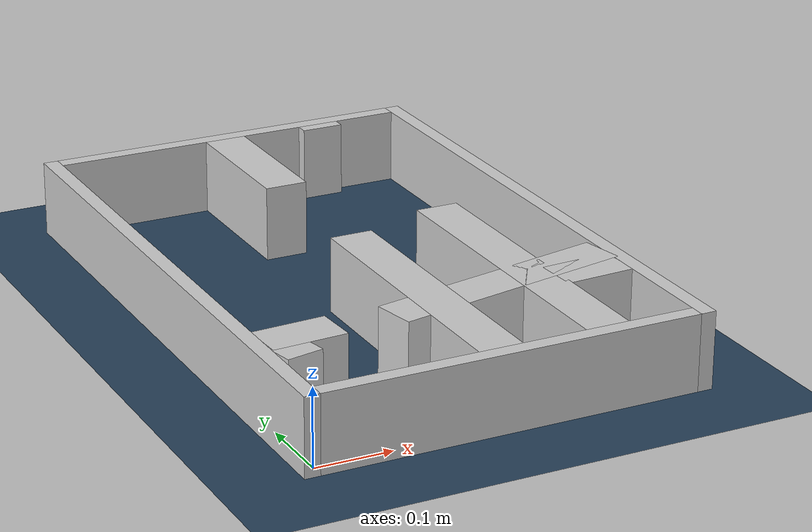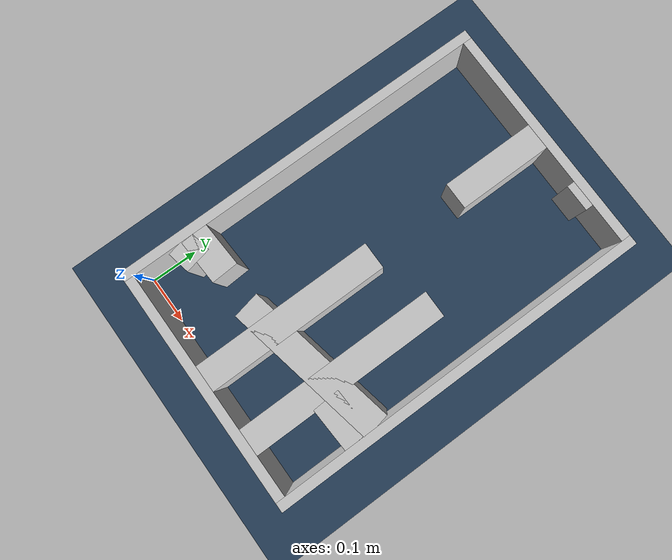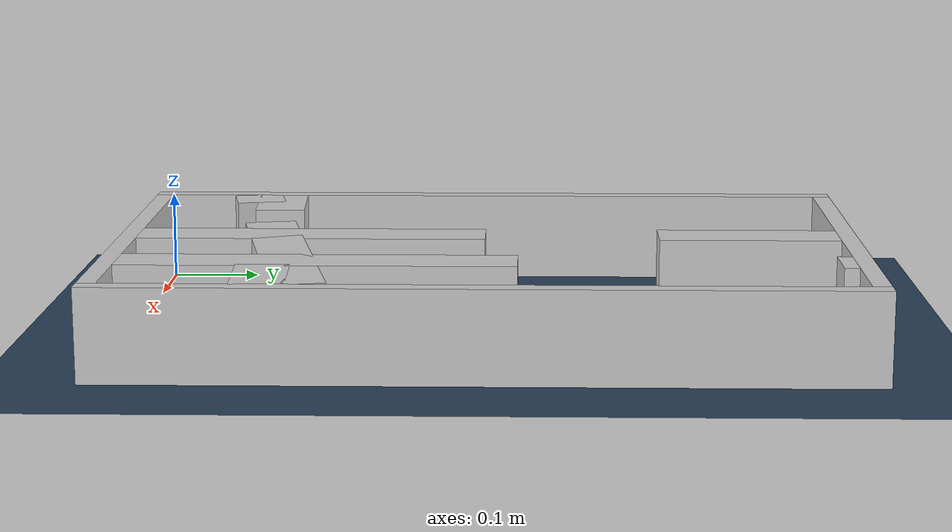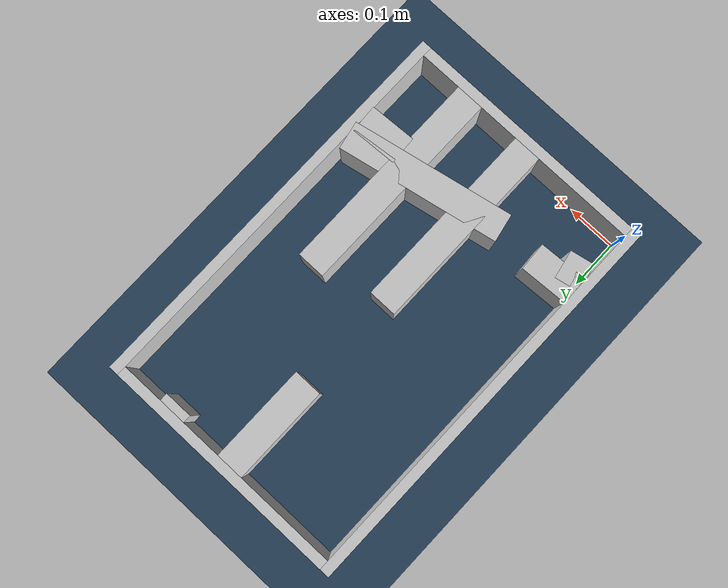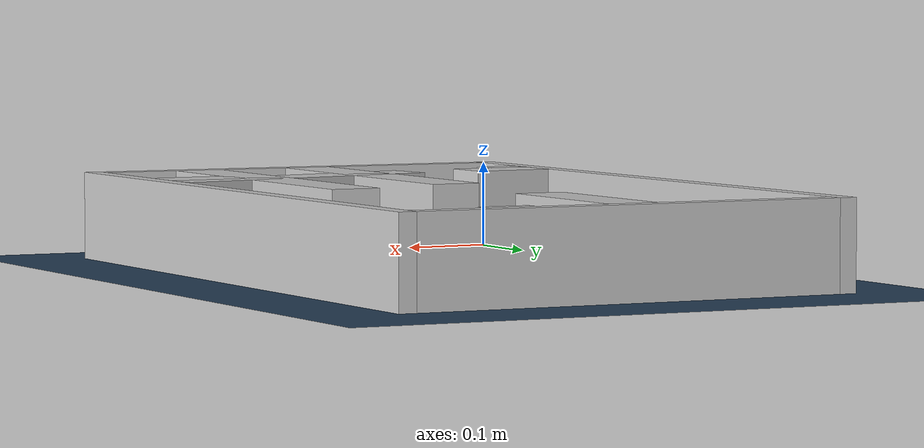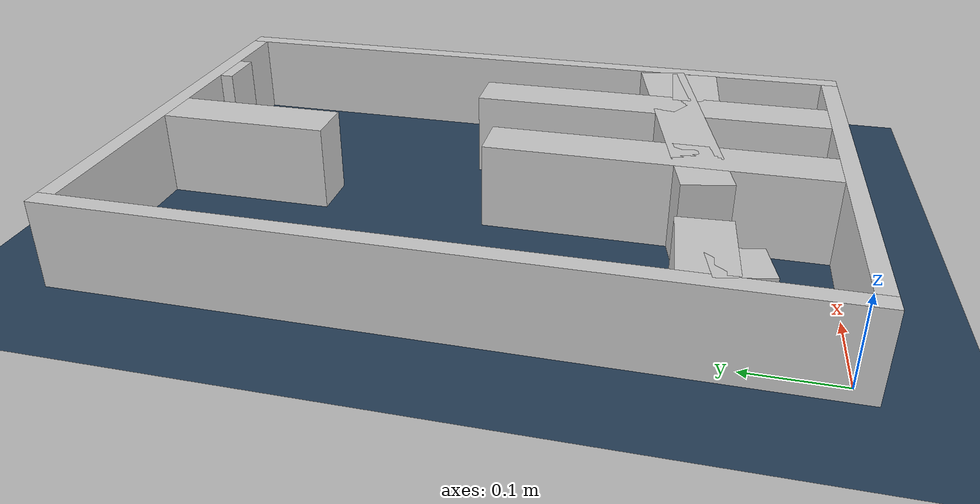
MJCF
<?xml version="1.0" ?>
<mujoco model="generated_real_template">
  <compiler angle="degree"/>
  <option timestep="0.002" integrator="implicitfast" iterations="100" cone="elliptic"/>
  <default>
    <geom density="1"/>
  </default>
  <asset>
    <texture builtin="gradient" height="3072" rgb1="0.3 0.5 0.7" rgb2="0 0 0" type="skybox" width="512"/>
    <texture builtin="checker" height="300" mark="edge" markrgb="0.8 0.8 0.8" name="groundplane" rgb1="0.2 0.3 0.4" rgb2="0.1 0.2 0.3" type="2d" width="300"/>
    <material name="groundplane" reflectance="0.2" texrepeat="5 5" texture="groundplane" texuniform="true"/>
  </asset>
  <worldbody>
    <light dir="0 0 -1" directional="true" pos="0 0 1.5"/>
    <geom name="floor" type="plane" condim="4" friction="0.5 0.005 0.001" material="groundplane" size="0 0 0.05"/>
    <body name="walls">
      <geom name="wall_boundary_left" type="box" condim="4" friction="1.0 0.005 0.0001" rgba="0.8 0.8 0.8 1" pos="-0.010000 0.387500 0.050000" euler="0 0 0.000000" size="0.010000 0.407500 0.050000"/>
      <geom name="wall_boundary_right" type="box" condim="4" friction="1.0 0.005 0.0001" rgba="0.8 0.8 0.8 1" pos="0.500000 0.387500 0.050000" euler="0 0 0.000000" size="0.010000 0.407500 0.050000"/>
      <geom name="wall_boundary_bottom" type="box" condim="4" friction="1.0 0.005 0.0001" rgba="0.8 0.8 0.8 1" pos="0.245000 -0.010000 0.050000" euler="0 0 0.000000" size="0.245000 0.010000 0.050000"/>
      <geom name="wall_boundary_top" type="box" condim="4" friction="1.0 0.005 0.0001" rgba="0.8 0.8 0.8 1" pos="0.245000 0.785000 0.050000" euler="0 0 0.000000" size="0.245000 0.010000 0.050000"/>
      <geom name="wall_inner_1_1" type="box" condim="4" friction="1.0 0.005 0.0001" rgba="0.8 0.8 0.8 1" pos="0.329445 0.170110 0.050000" euler="0 0 -168.562670" size="0.163808 0.028500 0.050000"/>
      <geom name="wall_inner_1_2" type="box" condim="4" friction="1.0 0.005 0.0001" rgba="0.8 0.8 0.8 1" pos="0.023957 0.108305 0.050000" euler="0 0 -168.562670" size="0.024442 0.028500 0.050000"/>
      <geom name="wall_inner_2_1" type="box" condim="4" friction="1.0 0.005 0.0001" rgba="0.8 0.8 0.8 1" pos="0.443545 0.158542 0.050000" euler="0 0 -176.952098" size="0.046521 0.028500 0.050000"/>
      <geom name="wall_inner_2_2" type="box" condim="4" friction="1.0 0.005 0.0001" rgba="0.8 0.8 0.8 1" pos="0.048486 0.137506 0.050000" euler="0 0 -176.952098" size="0.048555 0.028500 0.050000"/>
      <geom name="wall_inner_3_1" type="box" condim="4" friction="1.0 0.005 0.0001" rgba="0.8 0.8 0.8 1" pos="0.235353 0.192273 0.050000" euler="0 0 90.000000" size="0.192273 0.028500 0.050000"/>
      <geom name="wall_inner_3_2" type="box" condim="4" friction="1.0 0.005 0.0001" rgba="0.8 0.8 0.8 1" pos="0.235353 0.675455 0.050000" euler="0 0 90.000000" size="0.099545 0.028500 0.050000"/>
      <geom name="wall_inner_4_1" type="box" condim="4" friction="1.0 0.005 0.0001" rgba="0.8 0.8 0.8 1" pos="0.375284 0.210678 0.050000" euler="0 0 90.000000" size="0.210678 0.028500 0.050000"/>
      <geom name="wall_inner_4_2" type="box" condim="4" friction="1.0 0.005 0.0001" rgba="0.8 0.8 0.8 1" pos="0.375284 0.766815 0.050000" euler="0 0 90.000000" size="0.008185 0.028500 0.050000"/>
    </body>
  </worldbody>
</mujoco>
